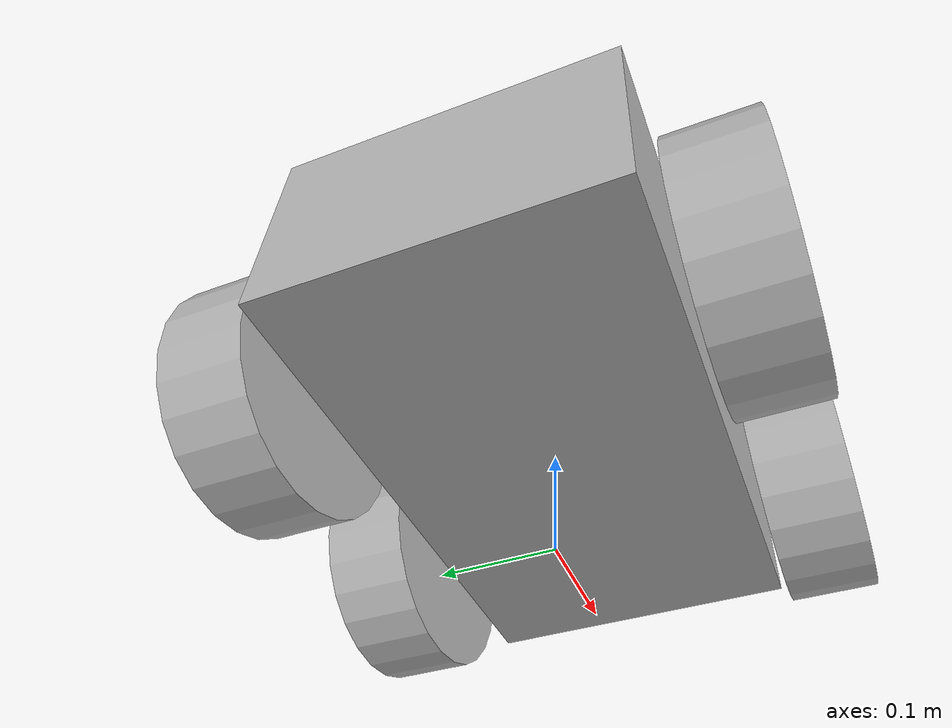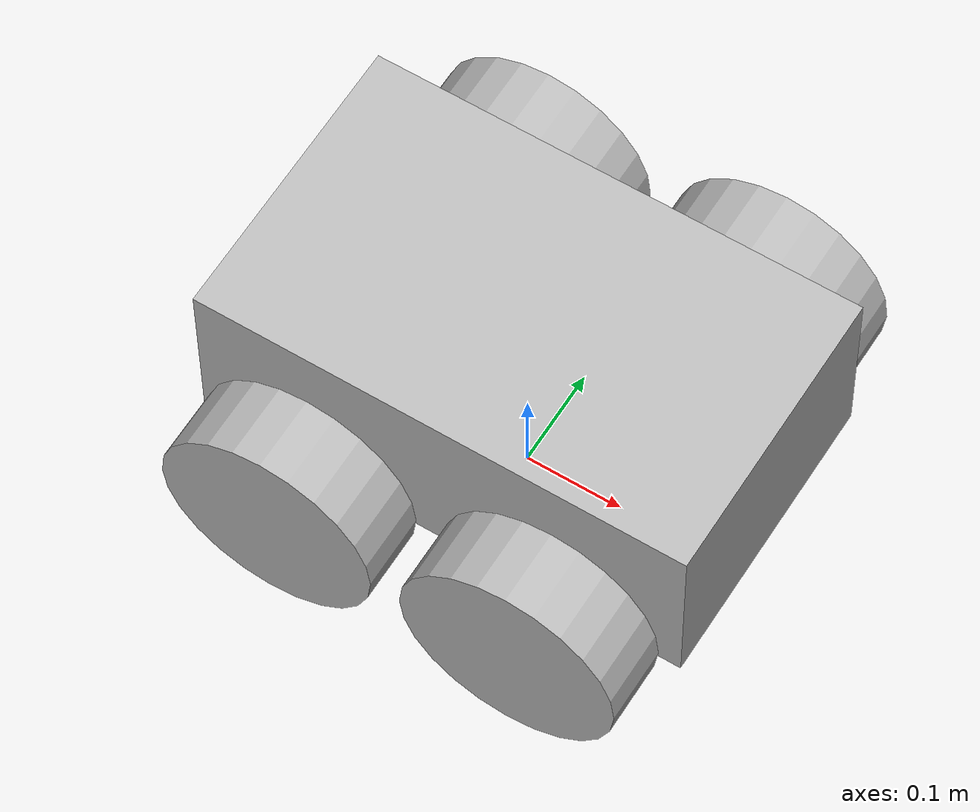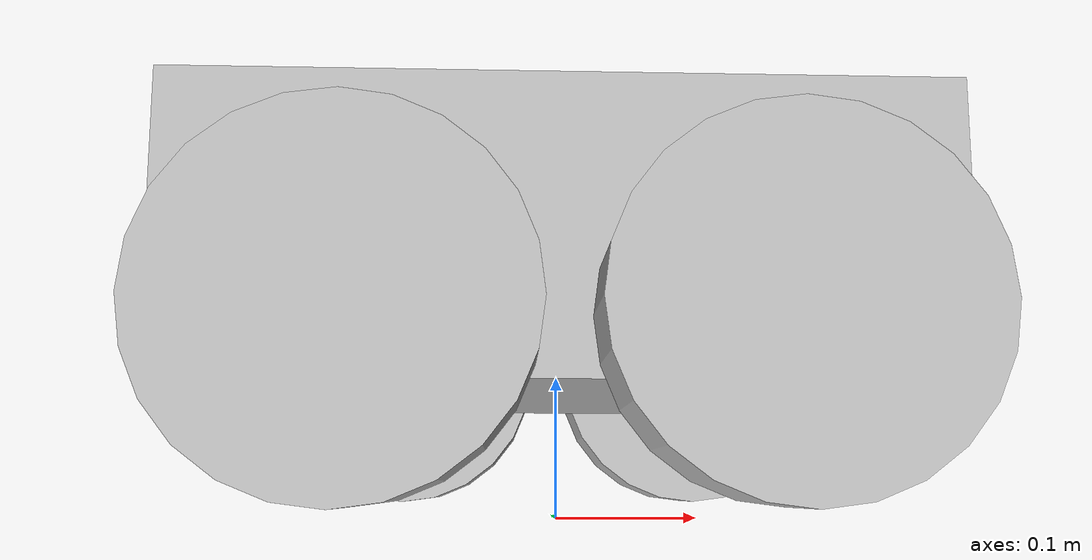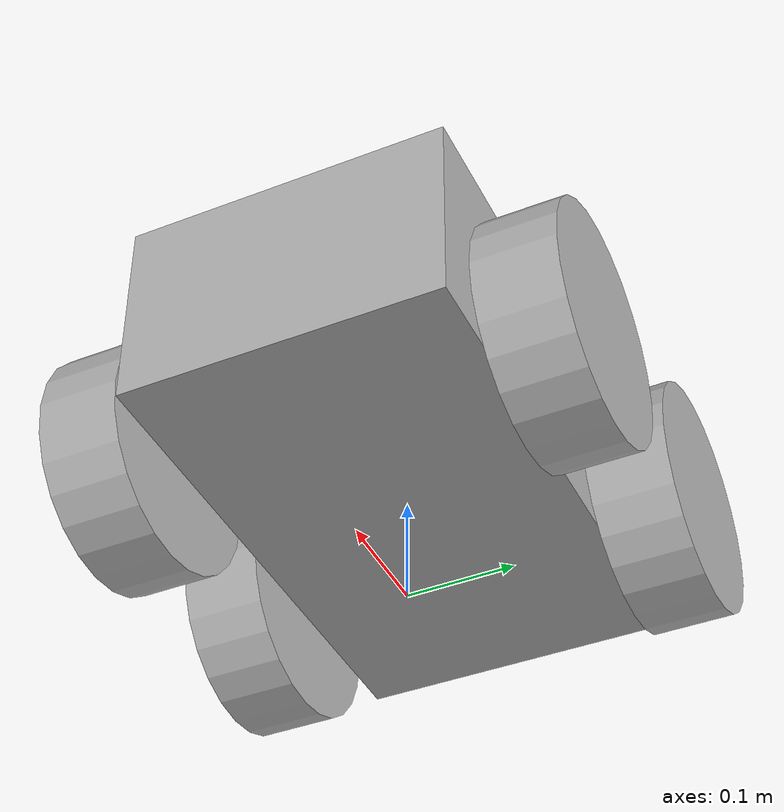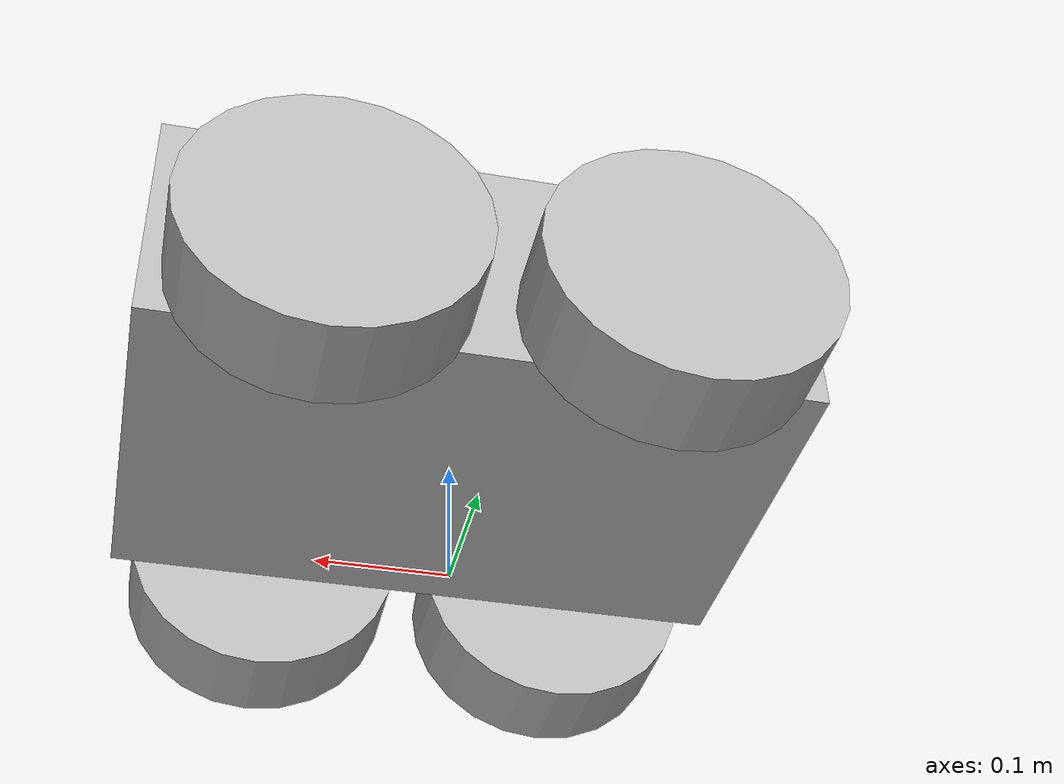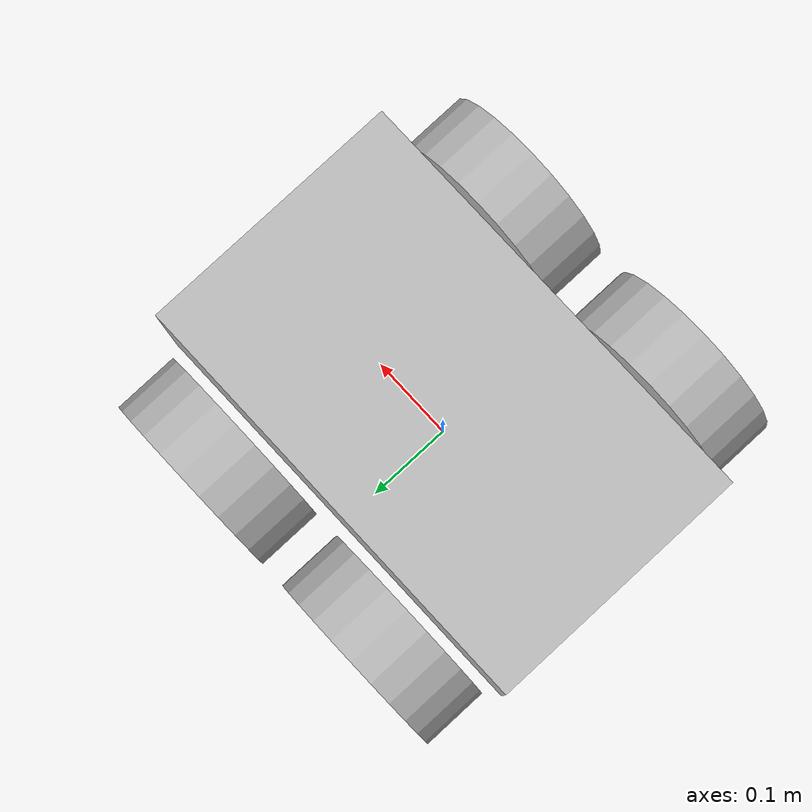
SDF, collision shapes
<?xml version="1.0" ?>
<sdf version="1.5">
    <model name="pioneer3at">
        <pose>0 0 0.180 0 0 0</pose>
        <static>false</static>
        <link name="chassis">
            <inertial>
                <mass>14.0</mass>
                <inertia>
                    <ixx>0.147116667</ixx>
                    <ixy>0.0</ixy>
                    <ixz>0.0</ixz>
                    <iyy>0.334951167</iyy>
                    <iyz>0.0</iyz>
                    <izz>0.3978345</izz>
                </inertia>
            </inertial>
            <collision name="collision">
                <geometry>
                    <box>
                        <size>0.501 0.300 0.19</size>
                    </box>
                </geometry>
            </collision>
            <visual name="visual">
                <geometry>
                    <mesh>
                        <uri>meshes/chassis.dae</uri>
                    </mesh>
                </geometry>
            </visual>
            <sensor name="chassis_contact" type="contact">
                <contact>
                    <collision>collision</collision>
                </contact>
                <update_rate>30</update_rate>
            </sensor>
        </link>
        <link name="right_front_wheel">
            <pose>0.125 -0.201 -0.06 1.5707 0 0</pose>
            <inertial>
                <mass>1.5</mass>
                <inertia>
                    <ixx>0.005240625</ixx>
                    <iyy>0.005240625</iyy>
                    <izz>0.009075</izz>
                    <ixy>0</ixy>
                    <ixz>0</ixz>
                    <iyz>0</iyz>
                </inertia>
            </inertial>
            <collision name="collision">
                <geometry>
                    <cylinder>
                        <radius>0.110</radius>
                        <length>0.075</length>
                    </cylinder>
                </geometry>
                <surface>
                    <friction>
                        <ode>
                            <mu>1</mu>
                            <mu2>1</mu2>
                            <slip1>0.5</slip1>
                            <slip2>0</slip2>
                        </ode>
                    </friction>
                </surface>
            </collision>
            <visual name="visual">
                <geometry>
                    <mesh>
                        <uri>meshes/wheel.dae</uri>
                    </mesh>
                </geometry>
            </visual>
        </link>
        <link name="left_front_wheel">
            <pose>0.125 0.201 -0.06 1.5707 0 0</pose>
            <inertial>
                <mass>1.5</mass>
                <inertia>
                    <ixx>0.005240625</ixx>
                    <iyy>0.005240625</iyy>
                    <izz>0.009075</izz>
                    <ixy>0</ixy>
                    <ixz>0</ixz>
                    <iyz>0</iyz>
                </inertia>
            </inertial>
            <collision name="collision">
                <geometry>
                    <cylinder>
                        <radius>0.110</radius>
                        <length>0.075</length>
                    </cylinder>
                </geometry>
                <surface>
                    <friction>
                        <ode>
                            <mu>1</mu>
                            <mu2>1</mu2>
                            <slip1>0.5</slip1>
                            <slip2>0</slip2>
                        </ode>
                    </friction>
                </surface>
            </collision>
            <visual name="visual">
                <geometry>
                    <mesh>
                        <uri>meshes/wheel.dae</uri>
                    </mesh>
                </geometry>
            </visual>
        </link>
        <link name="right_rear_wheel">
            <pose>-0.125 -0.201 -0.06 1.5707 0 0</pose>
            <inertial>
                <mass>1.5</mass>
                <inertia>
                    <ixx>0.005240625</ixx>
                    <iyy>0.005240625</iyy>
                    <izz>0.009075</izz>
                    <ixy>0</ixy>
                    <ixz>0</ixz>
                    <iyz>0</iyz>
                </inertia>
            </inertial>
            <collision name="collision">
                <geometry>
                    <cylinder>
                        <radius>0.110</radius>
                        <length>0.075</length>
                    </cylinder>
                </geometry>
                <surface>
                    <friction>
                        <ode>
                            <mu>1</mu>
                            <mu2>1</mu2>
                            <slip1>0.5</slip1>
                            <slip2>0</slip2>
                        </ode>
                    </friction>
                </surface>
            </collision>
            <visual name="visual">
                <geometry>
                    <mesh>
                        <uri>meshes/wheel.dae</uri>
                    </mesh>
                </geometry>
            </visual>
        </link>
        <link name="left_rear_wheel">
            <pose>-0.125 0.201 -0.06 1.5707 0 0</pose>
            <inertial>
                <mass>1.5</mass>
                <inertia>
                    <ixx>0.005240625</ixx>
                    <iyy>0.005240625</iyy>
                    <izz>0.009075</izz>
                    <ixy>0</ixy>
                    <ixz>0</ixz>
                    <iyz>0</iyz>
                </inertia>
            </inertial>
            <collision name="collision">
                <geometry>
                    <cylinder>
                        <radius>0.110</radius>
                        <length>0.075</length>
                    </cylinder>
                </geometry>
                <surface>
                    <friction>
                        <ode>
                            <mu>1</mu>
                            <mu2>1</mu2>
                            <slip1>0.5</slip1>
                            <slip2>0</slip2>
                        </ode>
                    </friction>
                </surface>
            </collision>
            <visual name="visual">
                <geometry>
                    <mesh>
                        <uri>meshes/wheel.dae</uri>
                    </mesh>
                </geometry>
            </visual>
        </link>
        <joint type="revolute" name="right_front">
            <pose>0 0 0 0 0 0</pose>
            <child>right_front_wheel</child>
            <parent>chassis</parent>
            <axis>
                <xyz>0 1 0</xyz>
                <use_parent_model_frame>true</use_parent_model_frame>
            </axis>
        </joint>
        <joint type="revolute" name="right_rear">
            <pose>0 0 0 0 0 0</pose>
            <child>right_rear_wheel</child>
            <parent>chassis</parent>
            <axis>
                <xyz>0 1 0</xyz>
                <use_parent_model_frame>true</use_parent_model_frame>
            </axis>
        </joint>
        <joint type="revolute" name="left_front">
            <pose>0 0 0 0 0 0</pose>
            <child>left_front_wheel</child>
            <parent>chassis</parent>
            <axis>
                <xyz>0 1 0</xyz>
                <use_parent_model_frame>true</use_parent_model_frame>
            </axis>
        </joint>
        <joint type="revolute" name="left_rear">
            <pose>0 0 0 0 0 0</pose>
            <child>left_rear_wheel</child>
            <parent>chassis</parent>
            <axis>
                <xyz>0 1 0</xyz>
                <use_parent_model_frame>true</use_parent_model_frame>
            </axis>
        </joint>
        <plugin filename="ignition-gazebo-velocity-control-system"
                name="gz::sim::systems::VelocityControl">
        </plugin>

        <plugin filename="ignition-gazebo-odometry-publisher-system"
                name="ignition::gazebo::systems::OdometryPublisher">
          <dimensions>3</dimensions>
          <odom_frame>world</odom_frame>
          <robot_base_frame>simple_ground_robot</robot_base_frame>
        </plugin>

        <plugin filename="ignition-gazebo-pose-publisher-system"
                name="gz::sim::systems::PosePublisher">
          <publish_link_pose>true</publish_link_pose>
          <publish_collision_pose>false</publish_collision_pose>
          <publish_visual_pose>false</publish_visual_pose>
          <publish_nested_model_pose>false</publish_nested_model_pose>
        </plugin>
    </model>
</sdf>
